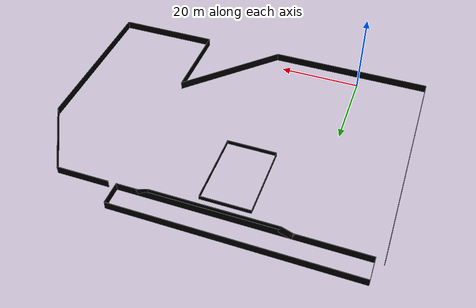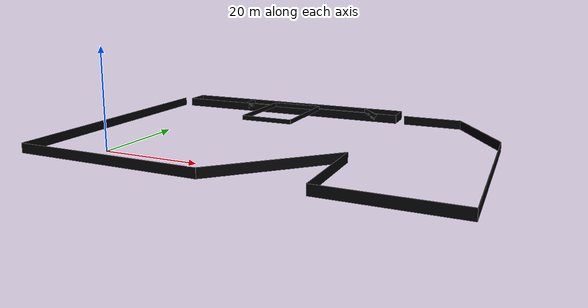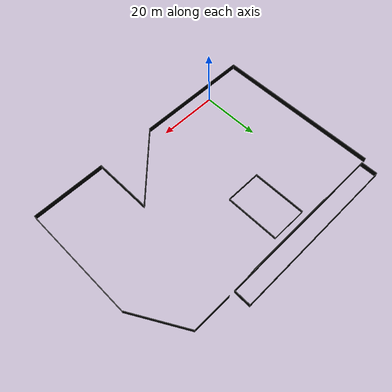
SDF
<?xml version="1.0"?>
<sdf version="1.4">
  <model name="inner_wall">
    <static>true</static>
    <link name="link">
      <collision name="collision">
        <geometry>
          <box>
            <size>1 0.1 3</size>
          </box>
        </geometry>
        <surface>
          <friction>
            <ode>
              <mu>1</mu>
              <mu2>1</mu2>
              <fdir1>0.000000 0.000000 0.000000</fdir1>
              <slip1>0.000000</slip1>
              <slip2>0.000000</slip2>
            </ode>
          </friction>
          <bounce>
            <restitution_coefficient>0.000000</restitution_coefficient>
            <threshold>100000.000000</threshold>
          </bounce>
          <contact>
            <ode>
              <soft_cfm>0.000000</soft_cfm>
              <soft_erp>0.200000</soft_erp>
              <kp>100000.000000</kp>
              <kd>1.000000</kd>
              <max_vel>100.000000</max_vel>
              <min_depth>0.001000</min_depth>
            </ode>
          </contact>
        </surface>
      </collision>
      <visual name="visual_1">
        <pose>-17 23.8 0  0 0 1.5708</pose>
        <cast_shadows>true</cast_shadows>
        <geometry>
          <box>
            <size>57 0.1 2</size>
          </box>
        </geometry>
        <material>
          <ambient>238 156 48 1</ambient>
          <diffuse>0 0 0 1</diffuse>
          <specular>0 0 0 0</specular>
          <emissive>0 0 0 1</emissive>
        </material>
      </visual>
      <visual name="visual_2">
        <pose>3 -4.7 0  0 0 0</pose>
        <cast_shadows>true</cast_shadows>
        <geometry>
          <box>
            <size>40 0.1 2</size>
          </box>
        </geometry>
        <material>
          <ambient>238 156 48 1</ambient>
          <diffuse>0 0 0 1</diffuse>
          <specular>0 0 0 0</specular>
          <emissive>0 0 0 1</emissive>
        </material>
      </visual>
      <visual name="visual_3">
        <pose>33.0 5.35 0  0 0 0.785398</pose>
        <cast_shadows>true</cast_shadows>
        <geometry>
          <box>
            <size>28.2843 0.1 2</size>
          </box>
        </geometry>
        <material>
          <ambient>238 156 48 1</ambient>
          <diffuse>0 0 0 1</diffuse>
          <specular>0 0 0 0</specular>
          <emissive>0 0 0 1</emissive>
        </material>
      </visual>
      <visual name="visual_4">
        <pose>43 5.325 0  0 0 1.5708</pose>
        <cast_shadows>true</cast_shadows>
        <geometry>
          <box>
            <size>20.05 0.1 2</size>
          </box>
        </geometry>
        <material>
          <ambient>238 156 48 1</ambient>
          <diffuse>0 0 0 1</diffuse>
          <specular>0 0 0 0</specular>
          <emissive>0 0 0 1</emissive>
        </material>
      </visual>
      <visual name="visual_5">
        <pose>55.5 -4.7 0  0 0 0</pose>
        <cast_shadows>true</cast_shadows>
        <geometry>
          <box>
            <size>25 0.1 2</size>
          </box>
        </geometry>
        <material>
          <ambient>238 156 48 1</ambient>
          <diffuse>0 0 0 1</diffuse>
          <specular>0 0 0 0</specular>
          <emissive>0 0 0 1</emissive>
        </material>
      </visual>
      <visual name="visual_6">
        <pose>68 15.15 0  0 0 1.5708</pose>
        <cast_shadows>true</cast_shadows>
        <geometry>
          <box>
            <size>39.7 0.1 2</size>
          </box>
        </geometry>
        <material>
          <ambient>238 156 48 1</ambient>
          <diffuse>0 0 0 1</diffuse>
          <specular>0 0 0 0</specular>
          <emissive>0 0 0 1</emissive>
        </material>
      </visual>
      <visual name="visual_7">
        <pose>63.0   43.65 0  0 0 2.094399</pose>
        <cast_shadows>true</cast_shadows>
        <geometry>
          <box>
            <size>19.9822 0.1 2</size>
          </box>
        </geometry>
        <material>
          <ambient>238 156 48 1</ambient>
          <diffuse>0 0 0 1</diffuse>
          <specular>0 0 0 0</specular>
          <emissive>0 0 0 1</emissive>
        </material>
      </visual>
      <visual name="visual_8">
        <pose>14 52.3 0  0 0 0</pose>
        <cast_shadows>true</cast_shadows>
        <geometry>
          <box>
            <size>58 0.1 2</size>
          </box>
        </geometry>
        <material>
          <ambient>238 156 48 1</ambient>
          <diffuse>0 0 0 1</diffuse>
          <specular>0 0 0 0</specular>
          <emissive>0 0 0 1</emissive>
        </material>
      </visual>
      <visual name="visual_13">
        <pose>20 52.3 1.6  0 0 0</pose>
        <cast_shadows>true</cast_shadows>
        <geometry>
          <box>
            <size>30.5 0.1 1</size>
          </box>
        </geometry>
        <material>
          <ambient>238 156 48 1</ambient>
          <diffuse>0 0 0 1</diffuse>
          <specular>0 0 0 0</specular>
          <emissive>0 0 0 1</emissive>
        </material>
      </visual>
      <visual name="visual_15">
        <pose>36.36 52.3 0.52  0 0.4 0</pose>
        <cast_shadows>true</cast_shadows>
        <geometry>
          <box>
            <size>3.25 0.1 2</size>
          </box>
        </geometry>
        <material>
          <ambient>238 156 48 1</ambient>
          <diffuse>0 0 0 1</diffuse>
          <specular>0 0 0 0</specular>
          <emissive>0 0 0 1</emissive>
        </material>
      </visual>
      <visual name="visual_16">
        <pose>3.64 52.3 0.52  0 -0.4 0</pose>
        <cast_shadows>true</cast_shadows>
        <geometry>
          <box>
            <size>3.25 0.1 2</size>
          </box>
        </geometry>
        <material>
          <ambient>238 156 48 1</ambient>
          <diffuse>0 0 0 1</diffuse>
          <specular>0 0 0 0</specular>
          <emissive>0 0 0 1</emissive>
        </material>
      </visual><visual name="visual_17">
        <pose>51.5 52.3 0  0 0 0</pose>
        <cast_shadows>true</cast_shadows>
        <geometry>
          <box>
            <size>13 0.1 2</size>
          </box>
        </geometry>
        <material>
          <ambient>238 156 48 1</ambient>
          <diffuse>0 0 0 1</diffuse>
          <specular>0 0 0 0</specular>
          <emissive>0 0 0 1</emissive>
        </material>
      </visual>
      <visual name="visual_18">
        <pose>14 58 0  0 0 0</pose>
        <cast_shadows>true</cast_shadows>
        <geometry>
          <box>
            <size>58 0.1 2</size>
          </box>
        </geometry>
        <material>
          <ambient>238 156 48 1</ambient>
          <diffuse>0 0 0 1</diffuse>
          <specular>0 0 0 0</specular>
          <emissive>0 0 0 1</emissive>
        </material>
      </visual>
	<visual name="visual_19">
        <pose>43 55.15 0  0 0 1.5708</pose>
        <cast_shadows>true</cast_shadows>
        <geometry>
          <box>
            <size>5.7 0.1 2</size>
          </box>
        </geometry>
        <material>
          <ambient>238 156 48 1</ambient>
          <diffuse>0 0 0 1</diffuse>
          <specular>0 0 0 0</specular>
          <emissive>0 0 0 1</emissive>
        </material>
      </visual>
	<visual name="visual_20">
        <pose>-15 55.15 0  0 0 1.5708</pose>
        <cast_shadows>true</cast_shadows>
        <geometry>
          <box>
            <size>5.7 0.1 2</size>
          </box>
        </geometry>
        <material>
          <ambient>238 156 48 1</ambient>
          <diffuse>0 0 0 1</diffuse>
          <specular>0 0 0 0</specular>
          <emissive>0 0 0 1</emissive>
        </material>
      </visual>

      <visual name="visual_9">
        <pose>12 41.3 1.6  0 0 1.5708</pose>
        <cast_shadows>true</cast_shadows>
        <geometry>
          <box>
            <size>18 0.1 1</size>
          </box>
        </geometry>
        <material>
          <ambient>238 156 48 1</ambient>
          <diffuse>0 0 0 1</diffuse>
          <specular>0 0 0 0</specular>
          <emissive>0 0 0 1</emissive>
        </material>
      </visual>
      <visual name="visual_10">
        <pose>18 32.3 1.6  0 0 0</pose>
        <cast_shadows>true</cast_shadows>
        <geometry>
          <box>
            <size>12 0.1 1</size>
          </box>
        </geometry>
        <material>
          <ambient>238 156 48 1</ambient>
          <diffuse>0 0 0 1</diffuse>
          <specular>0 0 0 0</specular>
          <emissive>0 0 0 1</emissive>
        </material>
      </visual>
      <visual name="visual_11">
        <pose>24 41.3 1.6  0 0 1.5708</pose>
        <cast_shadows>true</cast_shadows>
        <geometry>
          <box>
            <size>18 0.1 1</size>
          </box>
        </geometry>
        <material>
          <ambient>238 156 48 1</ambient>
          <diffuse>0 0 0 1</diffuse>
          <specular>0 0 0 0</specular>
          <emissive>0 0 0 1</emissive>
        </material>
      </visual>
      <visual name="visual_12">
        <pose>18 50.3 1.6  0 0 0</pose>
        <cast_shadows>true</cast_shadows>
        <geometry>
          <box>
            <size>12 0.1 1</size>
          </box>
        </geometry>
        <material>
          <ambient>238 156 48 1</ambient>
          <diffuse>0 0 0 1</diffuse>
          <specular>0 0 0 0</specular>
          <emissive>0 0 0 1</emissive>
        </material>
      </visual>

    </link>
  </model>
</sdf>
